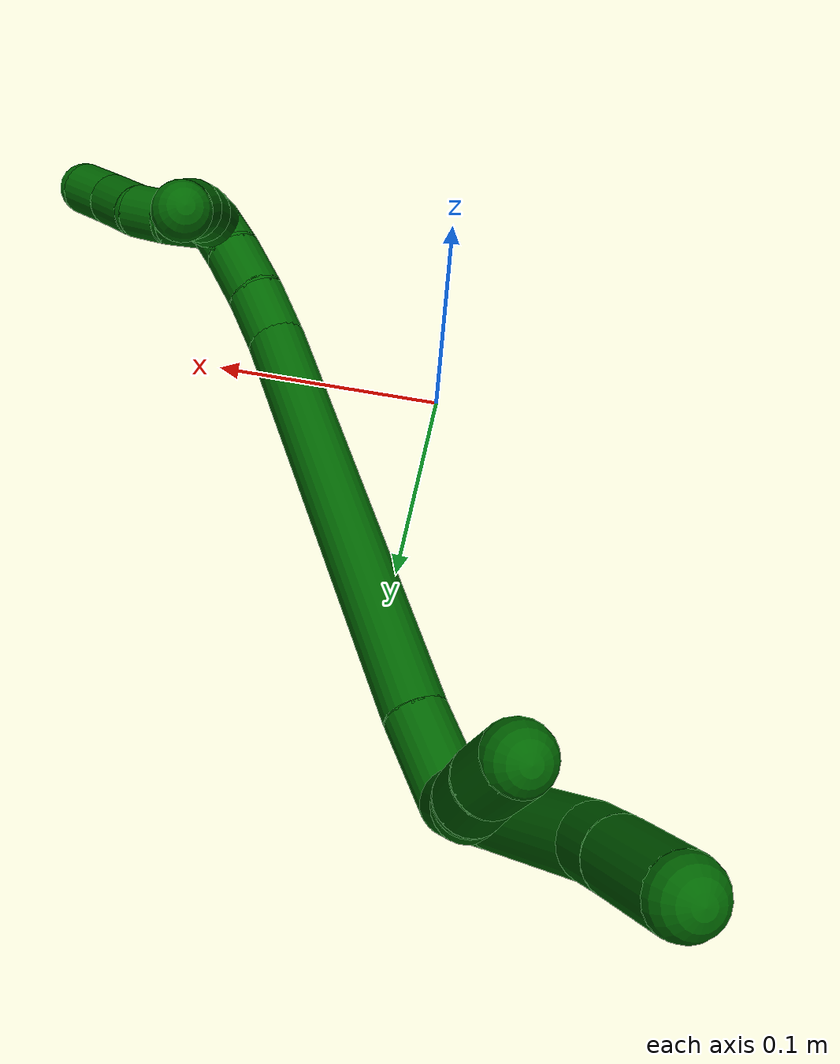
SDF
<sdf version="1.7">
 <world name="default">
  <model name="bin">
   <static>1</static>
   <link name="bottom">
    <collision name="collision-bottom">
     <pose>0 0 -0.01 0 -0 0</pose>
     <geometry><box><size>0.8 0.6 0.02</size></box></geometry>
     <surface>
      <friction><ode><mu>100</mu><mu2>100</mu2></ode></friction>
      <contact><collide_bitmask>65535</collide_bitmask></contact>
     </surface>
    </collision>
   </link>
   <link name="west_wall">
    <collision name="collision-west_wall">
     <pose>-0.41 0 0.1 0 -0 0</pose>
     <geometry><box><size>0.02 0.6 0.2</size></box></geometry>
     <surface>
      <friction><ode><mu>100</mu><mu2>100</mu2></ode></friction>
      <contact><collide_bitmask>65535</collide_bitmask></contact>
     </surface>
    </collision>
   </link>
   <link name="east_wall">
    <collision name="collision-east_wall">
     <pose>0.41 0 0.1 0 -0 0</pose>
     <geometry><box><size>0.02 0.6 0.2</size></box></geometry>
     <surface>
      <friction><ode><mu>100</mu><mu2>100</mu2></ode></friction>
      <contact><collide_bitmask>65535</collide_bitmask></contact>
     </surface>
    </collision>
   </link>
   <link name="south_wall">
    <collision name="collision-south_wall">
     <pose>0 -0.31 0.1 0 -0 0</pose>
     <geometry><box><size>0.8 0.02 0.2</size></box></geometry>
     <surface>
      <friction><ode><mu>100</mu><mu2>100</mu2></ode></friction>
      <contact><collide_bitmask>65535</collide_bitmask></contact>
     </surface>
    </collision>
   </link>
   <link name="north_wall">
    <collision name="collision-north_wall">
     <pose>0 0.31 0.1 0 -0 0</pose>
     <geometry><box><size>0.8 0.02 0.2</size></box></geometry>
     <surface>
      <friction><ode><mu>100</mu><mu2>100</mu2></ode></friction>
      <contact><collide_bitmask>65535</collide_bitmask></contact>
     </surface>
    </collision>
   </link>
  </model>
  <model name="6">
   <static>0</static>
   <link name="6">
    <collision name="collision-cylinder-e_1_2_8">
     <pose>-0.002357 -0.001184 0.015288 0.077267 -0.152524 -0.005907</pose>
     <geometry><cylinder><radius>0.0125</radius><length>0.031027</length></cylinder></geometry>
     <surface>
      <friction><ode><mu>1.16</mu><mu2>1.16</mu2><slip1>0</slip1><slip2>0</slip2></ode></friction>
      <contact><ode><kp>1e+06</kp><kd>1</kd><max_vel>0</max_vel><min_depth>0.001</min_depth></ode></contact>
     </surface>
    </collision>
    <visual name="visual-cylinder-e_1_2_8">
     <pose>-0.002357 -0.001184 0.015288 0.077267 -0.152524 -0.005907</pose>
     <geometry><cylinder><radius>0.0125</radius><length>0.031027</length></cylinder></geometry>
     <material><ambient>0 0.392157 0.003922 1</ambient></material>
    </visual>
    <collision name="collision-cylinder-e_2_8_9">
     <pose>-0.009505 -0.004241 0.060292 0.06298 -0.159542 -0.005036</pose>
     <geometry><cylinder><radius>0.0125</radius><length>0.060317</length></cylinder></geometry>
     <surface>
      <friction><ode><mu>1.16</mu><mu2>1.16</mu2><slip1>0</slip1><slip2>0</slip2></ode></friction>
      <contact><ode><kp>1e+06</kp><kd>1</kd><max_vel>0</max_vel><min_depth>0.001</min_depth></ode></contact>
     </surface>
    </collision>
    <visual name="visual-cylinder-e_2_8_9">
     <pose>-0.009505 -0.004241 0.060292 0.06298 -0.159542 -0.005036</pose>
     <geometry><cylinder><radius>0.0125</radius><length>0.060317</length></cylinder></geometry>
     <material><ambient>0 0.392157 0.003922 1</ambient></material>
    </visual>
    <collision name="collision-cylinder-e_3_9_10">
     <pose>-0.014157 -0.006258 0.100012 0.014255 0.013971 0.0001</pose>
     <geometry><cylinder><radius>0.0125</radius><length>0.02001</length></cylinder></geometry>
     <surface>
      <friction><ode><mu>1.16</mu><mu2>1.16</mu2><slip1>0</slip1><slip2>0</slip2></ode></friction>
      <contact><ode><kp>1e+06</kp><kd>1</kd><max_vel>0</max_vel><min_depth>0.001</min_depth></ode></contact>
     </surface>
    </collision>
    <visual name="visual-cylinder-e_3_9_10">
     <pose>-0.014157 -0.006258 0.100012 0.014255 0.013971 0.0001</pose>
     <geometry><cylinder><radius>0.0125</radius><length>0.02001</length></cylinder></geometry>
     <material><ambient>0 0.392157 0.003922 1</ambient></material>
    </visual>
    <collision name="collision-cylinder-e_4_10_6">
     <pose>-0.014432 -0.005878 0.129326 -0.027044 -0.021459 0.00029</pose>
     <geometry><cylinder><radius>0.0125</radius><length>0.038646</length></cylinder></geometry>
     <surface>
      <friction><ode><mu>1.16</mu><mu2>1.16</mu2><slip1>0</slip1><slip2>0</slip2></ode></friction>
      <contact><ode><kp>1e+06</kp><kd>1</kd><max_vel>0</max_vel><min_depth>0.001</min_depth></ode></contact>
     </surface>
    </collision>
    <visual name="visual-cylinder-e_4_10_6">
     <pose>-0.014432 -0.005878 0.129326 -0.027044 -0.021459 0.00029</pose>
     <geometry><cylinder><radius>0.0125</radius><length>0.038646</length></cylinder></geometry>
     <material><ambient>0 0.392157 0.003922 1</ambient></material>
    </visual>
    <collision name="collision-cylinder-e_1_2_11">
     <pose>0.002058 -0.001786 0.013452 0.132017 0.150526 0.009969</pose>
     <geometry><cylinder><radius>0.0125</radius><length>0.027451</length></cylinder></geometry>
     <surface>
      <friction><ode><mu>1.16</mu><mu2>1.16</mu2><slip1>0</slip1><slip2>0</slip2></ode></friction>
      <contact><ode><kp>1e+06</kp><kd>1</kd><max_vel>0</max_vel><min_depth>0.001</min_depth></ode></contact>
     </surface>
    </collision>
    <visual name="visual-cylinder-e_1_2_11">
     <pose>0.002058 -0.001786 0.013452 0.132017 0.150526 0.009969</pose>
     <geometry><cylinder><radius>0.0125</radius><length>0.027451</length></cylinder></geometry>
     <material><ambient>0 0.392157 0.003922 1</ambient></material>
    </visual>
    <collision name="collision-cylinder-e_2_11_12">
     <pose>0.008147 -0.007317 0.0399 0.280559 0.289609 0.041177</pose>
     <geometry><cylinder><radius>0.0125</radius><length>0.028224</length></cylinder></geometry>
     <surface>
      <friction><ode><mu>1.16</mu><mu2>1.16</mu2><slip1>0</slip1><slip2>0</slip2></ode></friction>
      <contact><ode><kp>1e+06</kp><kd>1</kd><max_vel>0</max_vel><min_depth>0.001</min_depth></ode></contact>
     </surface>
    </collision>
    <visual name="visual-cylinder-e_2_11_12">
     <pose>0.008147 -0.007317 0.0399 0.280559 0.289609 0.041177</pose>
     <geometry><cylinder><radius>0.0125</radius><length>0.028224</length></cylinder></geometry>
     <material><ambient>0 0.392157 0.003922 1</ambient></material>
    </visual>
    <collision name="collision-cylinder-e_3_12_13">
     <pose>0.012683 -0.015797 0.062359 0.463907 0.047793 0.011291</pose>
     <geometry><cylinder><radius>0.0125</radius><length>0.021187</length></cylinder></geometry>
     <surface>
      <friction><ode><mu>1.16</mu><mu2>1.16</mu2><slip1>0</slip1><slip2>0</slip2></ode></friction>
      <contact><ode><kp>1e+06</kp><kd>1</kd><max_vel>0</max_vel><min_depth>0.001</min_depth></ode></contact>
     </surface>
    </collision>
    <visual name="visual-cylinder-e_3_12_13">
     <pose>0.012683 -0.015797 0.062359 0.463907 0.047793 0.011291</pose>
     <geometry><cylinder><radius>0.0125</radius><length>0.021187</length></cylinder></geometry>
     <material><ambient>0 0.392157 0.003922 1</ambient></material>
    </visual>
    <collision name="collision-cylinder-e_4_13_5">
     <pose>0.012443 -0.025671 0.08216 0.461361 -0.064524 -0.015159</pose>
     <geometry><cylinder><radius>0.0125</radius><length>0.023137</length></cylinder></geometry>
     <surface>
      <friction><ode><mu>1.16</mu><mu2>1.16</mu2><slip1>0</slip1><slip2>0</slip2></ode></friction>
      <contact><ode><kp>1e+06</kp><kd>1</kd><max_vel>0</max_vel><min_depth>0.001</min_depth></ode></contact>
     </surface>
    </collision>
    <visual name="visual-cylinder-e_4_13_5">
     <pose>0.012443 -0.025671 0.08216 0.461361 -0.064524 -0.015159</pose>
     <geometry><cylinder><radius>0.0125</radius><length>0.023137</length></cylinder></geometry>
     <material><ambient>0 0.392157 0.003922 1</ambient></material>
    </visual>
    <collision name="collision-cylinder-e_1_2_14">
     <pose>0.004395 -0.013514 -0.01107 2.2571 0.246482 0.511709</pose>
     <geometry><cylinder><radius>0.0125</radius><length>0.036028</length></cylinder></geometry>
     <surface>
      <friction><ode><mu>1.16</mu><mu2>1.16</mu2><slip1>0</slip1><slip2>0</slip2></ode></friction>
      <contact><ode><kp>1e+06</kp><kd>1</kd><max_vel>0</max_vel><min_depth>0.001</min_depth></ode></contact>
     </surface>
    </collision>
    <visual name="visual-cylinder-e_1_2_14">
     <pose>0.004395 -0.013514 -0.01107 2.2571 0.246482 0.511709</pose>
     <geometry><cylinder><radius>0.0125</radius><length>0.036028</length></cylinder></geometry>
     <material><ambient>0 0.392157 0.003922 1</ambient></material>
    </visual>
    <collision name="collision-cylinder-e_2_14_15">
     <pose>0.026712 -0.099158 -0.0814 2.25855 0.189668 0.397197</pose>
     <geometry><cylinder><radius>0.0125</radius><length>0.190109</length></cylinder></geometry>
     <surface>
      <friction><ode><mu>1.16</mu><mu2>1.16</mu2><slip1>0</slip1><slip2>0</slip2></ode></friction>
      <contact><ode><kp>1e+06</kp><kd>1</kd><max_vel>0</max_vel><min_depth>0.001</min_depth></ode></contact>
     </surface>
    </collision>
    <visual name="visual-cylinder-e_2_14_15">
     <pose>0.026712 -0.099158 -0.0814 2.25855 0.189668 0.397197</pose>
     <geometry><cylinder><radius>0.0125</radius><length>0.190109</length></cylinder></geometry>
     <material><ambient>0 0.392157 0.003922 1</ambient></material>
    </visual>
    <collision name="collision-cylinder-e_3_15_16">
     <pose>0.048753 -0.181776 -0.146233 2.0593 0.333896 0.546754</pose>
     <geometry><cylinder><radius>0.0125</radius><length>0.025144</length></cylinder></geometry>
     <surface>
      <friction><ode><mu>1.16</mu><mu2>1.16</mu2><slip1>0</slip1><slip2>0</slip2></ode></friction>
      <contact><ode><kp>1e+06</kp><kd>1</kd><max_vel>0</max_vel><min_depth>0.001</min_depth></ode></contact>
     </surface>
    </collision>
    <visual name="visual-cylinder-e_3_15_16">
     <pose>0.048753 -0.181776 -0.146233 2.0593 0.333896 0.546754</pose>
     <geometry><cylinder><radius>0.0125</radius><length>0.025144</length></cylinder></geometry>
     <material><ambient>0 0.392157 0.003922 1</ambient></material>
    </visual>
    <collision name="collision-cylinder-e_4_16_17">
     <pose>0.05726 -0.20203 -0.158585 2.17752 0.353504 0.657965</pose>
     <geometry><cylinder><radius>0.0125</radius><length>0.025341</length></cylinder></geometry>
     <surface>
      <friction><ode><mu>1.16</mu><mu2>1.16</mu2><slip1>0</slip1><slip2>0</slip2></ode></friction>
      <contact><ode><kp>1e+06</kp><kd>1</kd><max_vel>0</max_vel><min_depth>0.001</min_depth></ode></contact>
     </surface>
    </collision>
    <visual name="visual-cylinder-e_4_16_17">
     <pose>0.05726 -0.20203 -0.158585 2.17752 0.353504 0.657965</pose>
     <geometry><cylinder><radius>0.0125</radius><length>0.025341</length></cylinder></geometry>
     <material><ambient>0 0.392157 0.003922 1</ambient></material>
    </visual>
    <collision name="collision-cylinder-e_5_17_1">
     <pose>0.06534 -0.219698 -0.173142 2.34836 0.321586 0.738974</pose>
     <geometry><cylinder><radius>0.0125</radius><length>0.023376</length></cylinder></geometry>
     <surface>
      <friction><ode><mu>1.16</mu><mu2>1.16</mu2><slip1>0</slip1><slip2>0</slip2></ode></friction>
      <contact><ode><kp>1e+06</kp><kd>1</kd><max_vel>0</max_vel><min_depth>0.001</min_depth></ode></contact>
     </surface>
    </collision>
    <visual name="visual-cylinder-e_5_17_1">
     <pose>0.06534 -0.219698 -0.173142 2.34836 0.321586 0.738974</pose>
     <geometry><cylinder><radius>0.0125</radius><length>0.023376</length></cylinder></geometry>
     <material><ambient>0 0.392157 0.003922 1</ambient></material>
    </visual>
    <collision name="collision-cylinder-e_1_1_18">
     <pose>0.075748 -0.224804 -0.154801 -0.106627 0.250201 -0.013422</pose>
     <geometry><cylinder><radius>0.0125</radius><length>0.054227</length></cylinder></geometry>
     <surface>
      <friction><ode><mu>1.16</mu><mu2>1.16</mu2><slip1>0</slip1><slip2>0</slip2></ode></friction>
      <contact><ode><kp>1e+06</kp><kd>1</kd><max_vel>0</max_vel><min_depth>0.001</min_depth></ode></contact>
     </surface>
    </collision>
    <visual name="visual-cylinder-e_1_1_18">
     <pose>0.075748 -0.224804 -0.154801 -0.106627 0.250201 -0.013422</pose>
     <geometry><cylinder><radius>0.0125</radius><length>0.054227</length></cylinder></geometry>
     <material><ambient>0 0.392157 0.003922 1</ambient></material>
    </visual>
    <collision name="collision-cylinder-e_2_18_19">
     <pose>0.08599 -0.220685 -0.117726 -0.12024 0.309488 -0.018778</pose>
     <geometry><cylinder><radius>0.0125</radius><length>0.02317</length></cylinder></geometry>
     <surface>
      <friction><ode><mu>1.16</mu><mu2>1.16</mu2><slip1>0</slip1><slip2>0</slip2></ode></friction>
      <contact><ode><kp>1e+06</kp><kd>1</kd><max_vel>0</max_vel><min_depth>0.001</min_depth></ode></contact>
     </surface>
    </collision>
    <visual name="visual-cylinder-e_2_18_19">
     <pose>0.08599 -0.220685 -0.117726 -0.12024 0.309488 -0.018778</pose>
     <geometry><cylinder><radius>0.0125</radius><length>0.02317</length></cylinder></geometry>
     <material><ambient>0 0.392157 0.003922 1</ambient></material>
    </visual>
    <collision name="collision-cylinder-e_3_19_4">
     <pose>0.092888 -0.216892 -0.09627 -0.230981 0.302812 -0.035395</pose>
     <geometry><cylinder><radius>0.0125</radius><length>0.022602</length></cylinder></geometry>
     <surface>
      <friction><ode><mu>1.16</mu><mu2>1.16</mu2><slip1>0</slip1><slip2>0</slip2></ode></friction>
      <contact><ode><kp>1e+06</kp><kd>1</kd><max_vel>0</max_vel><min_depth>0.001</min_depth></ode></contact>
     </surface>
    </collision>
    <visual name="visual-cylinder-e_3_19_4">
     <pose>0.092888 -0.216892 -0.09627 -0.230981 0.302812 -0.035395</pose>
     <geometry><cylinder><radius>0.0125</radius><length>0.022602</length></cylinder></geometry>
     <material><ambient>0 0.392157 0.003922 1</ambient></material>
    </visual>
    <collision name="collision-cylinder-e_1_1_20">
     <pose>0.078351 -0.229195 -0.188797 2.94179 0.859067 2.71073</pose>
     <geometry><cylinder><radius>0.0125</radius><length>0.024605</length></cylinder></geometry>
     <surface>
      <friction><ode><mu>1.16</mu><mu2>1.16</mu2><slip1>0</slip1><slip2>0</slip2></ode></friction>
      <contact><ode><kp>1e+06</kp><kd>1</kd><max_vel>0</max_vel><min_depth>0.001</min_depth></ode></contact>
     </surface>
    </collision>
    <visual name="visual-cylinder-e_1_1_20">
     <pose>0.078351 -0.229195 -0.188797 2.94179 0.859067 2.71073</pose>
     <geometry><cylinder><radius>0.0125</radius><length>0.024605</length></cylinder></geometry>
     <material><ambient>0 0.392157 0.003922 1</ambient></material>
    </visual>
    <collision name="collision-cylinder-e_2_20_21">
     <pose>0.094188 -0.233139 -0.204803 2.8603 0.656587 2.35374</pose>
     <geometry><cylinder><radius>0.0125</radius><length>0.021368</length></cylinder></geometry>
     <surface>
      <friction><ode><mu>1.16</mu><mu2>1.16</mu2><slip1>0</slip1><slip2>0</slip2></ode></friction>
      <contact><ode><kp>1e+06</kp><kd>1</kd><max_vel>0</max_vel><min_depth>0.001</min_depth></ode></contact>
     </surface>
    </collision>
    <visual name="visual-cylinder-e_2_20_21">
     <pose>0.094188 -0.233139 -0.204803 2.8603 0.656587 2.35374</pose>
     <geometry><cylinder><radius>0.0125</radius><length>0.021368</length></cylinder></geometry>
     <material><ambient>0 0.392157 0.003922 1</ambient></material>
    </visual>
    <collision name="collision-cylinder-e_3_21_22">
     <pose>0.105702 -0.240001 -0.22586 2.80573 0.349591 1.61164</pose>
     <geometry><cylinder><radius>0.0125</radius><length>0.029148</length></cylinder></geometry>
     <surface>
      <friction><ode><mu>1.16</mu><mu2>1.16</mu2><slip1>0</slip1><slip2>0</slip2></ode></friction>
      <contact><ode><kp>1e+06</kp><kd>1</kd><max_vel>0</max_vel><min_depth>0.001</min_depth></ode></contact>
     </surface>
    </collision>
    <visual name="visual-cylinder-e_3_21_22">
     <pose>0.105702 -0.240001 -0.22586 2.80573 0.349591 1.61164</pose>
     <geometry><cylinder><radius>0.0125</radius><length>0.029148</length></cylinder></geometry>
     <material><ambient>0 0.392157 0.003922 1</ambient></material>
    </visual>
    <collision name="collision-cylinder-e_4_22_3">
     <pose>0.116826 -0.248565 -0.248823 2.75793 0.515547 1.87173</pose>
     <geometry><cylinder><radius>0.0125</radius><length>0.024879</length></cylinder></geometry>
     <surface>
      <friction><ode><mu>1.16</mu><mu2>1.16</mu2><slip1>0</slip1><slip2>0</slip2></ode></friction>
      <contact><ode><kp>1e+06</kp><kd>1</kd><max_vel>0</max_vel><min_depth>0.001</min_depth></ode></contact>
     </surface>
    </collision>
    <visual name="visual-cylinder-e_4_22_3">
     <pose>0.116826 -0.248565 -0.248823 2.75793 0.515547 1.87173</pose>
     <geometry><cylinder><radius>0.0125</radius><length>0.024879</length></cylinder></geometry>
     <material><ambient>0 0.392157 0.003922 1</ambient></material>
    </visual>
    <collision name="collision-sphere-3">
     <pose>0.122959 -0.252616 -0.258859 0 -0 0</pose>
     <geometry><sphere><radius>0.0125</radius></sphere></geometry>
     <surface>
      <friction><ode><mu>1.16</mu><mu2>1.16</mu2><slip1>0</slip1><slip2>0</slip2></ode></friction>
      <contact><ode><kp>1e+06</kp><kd>1</kd><max_vel>0</max_vel><min_depth>0.001</min_depth></ode></contact>
     </surface>
    </collision>
    <visual name="visual-sphere-3">
     <pose>0.122959 -0.252616 -0.258859 0 -0 0</pose>
     <geometry><sphere><radius>0.0125</radius></sphere></geometry>
     <material><ambient>0 0.392157 0.003922 1</ambient></material>
    </visual>
    <collision name="collision-sphere-22">
     <pose>0.110694 -0.244514 -0.238787 0 -0 0</pose>
     <geometry><sphere><radius>0.0125</radius></sphere></geometry>
     <surface>
      <friction><ode><mu>1.16</mu><mu2>1.16</mu2><slip1>0</slip1><slip2>0</slip2></ode></friction>
      <contact><ode><kp>1e+06</kp><kd>1</kd><max_vel>0</max_vel><min_depth>0.001</min_depth></ode></contact>
     </surface>
    </collision>
    <visual name="visual-sphere-22">
     <pose>0.110694 -0.244514 -0.238787 0 -0 0</pose>
     <geometry><sphere><radius>0.0125</radius></sphere></geometry>
     <material><ambient>0 0.392157 0.003922 1</ambient></material>
    </visual>
    <collision name="collision-sphere-21">
     <pose>0.10071 -0.235488 -0.212933 0 -0 0</pose>
     <geometry><sphere><radius>0.0125</radius></sphere></geometry>
     <surface>
      <friction><ode><mu>1.16</mu><mu2>1.16</mu2><slip1>0</slip1><slip2>0</slip2></ode></friction>
      <contact><ode><kp>1e+06</kp><kd>1</kd><max_vel>0</max_vel><min_depth>0.001</min_depth></ode></contact>
     </surface>
    </collision>
    <visual name="visual-sphere-21">
     <pose>0.10071 -0.235488 -0.212933 0 -0 0</pose>
     <geometry><sphere><radius>0.0125</radius></sphere></geometry>
     <material><ambient>0 0.392157 0.003922 1</ambient></material>
    </visual>
    <collision name="collision-sphere-20">
     <pose>0.087666 -0.23079 -0.196673 0 -0 0</pose>
     <geometry><sphere><radius>0.0125</radius></sphere></geometry>
     <surface>
      <friction><ode><mu>1.16</mu><mu2>1.16</mu2><slip1>0</slip1><slip2>0</slip2></ode></friction>
      <contact><ode><kp>1e+06</kp><kd>1</kd><max_vel>0</max_vel><min_depth>0.001</min_depth></ode></contact>
     </surface>
    </collision>
    <visual name="visual-sphere-20">
     <pose>0.087666 -0.23079 -0.196673 0 -0 0</pose>
     <geometry><sphere><radius>0.0125</radius></sphere></geometry>
     <material><ambient>0 0.392157 0.003922 1</ambient></material>
    </visual>
    <collision name="collision-sphere-4">
     <pose>0.096258 -0.214423 -0.08577 0 -0 0</pose>
     <geometry><sphere><radius>0.0125</radius></sphere></geometry>
     <surface>
      <friction><ode><mu>1.16</mu><mu2>1.16</mu2><slip1>0</slip1><slip2>0</slip2></ode></friction>
      <contact><ode><kp>1e+06</kp><kd>1</kd><max_vel>0</max_vel><min_depth>0.001</min_depth></ode></contact>
     </surface>
    </collision>
    <visual name="visual-sphere-4">
     <pose>0.096258 -0.214423 -0.08577 0 -0 0</pose>
     <geometry><sphere><radius>0.0125</radius></sphere></geometry>
     <material><ambient>0 0.392157 0.003922 1</ambient></material>
    </visual>
    <collision name="collision-sphere-11">
     <pose>0.004117 -0.003573 0.026905 0 -0 0</pose>
     <geometry><sphere><radius>0.0125</radius></sphere></geometry>
     <surface>
      <friction><ode><mu>1.16</mu><mu2>1.16</mu2><slip1>0</slip1><slip2>0</slip2></ode></friction>
      <contact><ode><kp>1e+06</kp><kd>1</kd><max_vel>0</max_vel><min_depth>0.001</min_depth></ode></contact>
     </surface>
    </collision>
    <visual name="visual-sphere-11">
     <pose>0.004117 -0.003573 0.026905 0 -0 0</pose>
     <geometry><sphere><radius>0.0125</radius></sphere></geometry>
     <material><ambient>0 0.392157 0.003922 1</ambient></material>
    </visual>
    <collision name="collision-sphere-6">
     <pose>-0.014846 -0.005356 0.148637 0 -0 0</pose>
     <geometry><sphere><radius>0.0125</radius></sphere></geometry>
     <surface>
      <friction><ode><mu>1.16</mu><mu2>1.16</mu2><slip1>0</slip1><slip2>0</slip2></ode></friction>
      <contact><ode><kp>1e+06</kp><kd>1</kd><max_vel>0</max_vel><min_depth>0.001</min_depth></ode></contact>
     </surface>
    </collision>
    <visual name="visual-sphere-6">
     <pose>-0.014846 -0.005356 0.148637 0 -0 0</pose>
     <geometry><sphere><radius>0.0125</radius></sphere></geometry>
     <material><ambient>0 0.392157 0.003922 1</ambient></material>
    </visual>
    <collision name="collision-sphere-10">
     <pose>-0.014017 -0.0064 0.110014 0 -0 0</pose>
     <geometry><sphere><radius>0.0125</radius></sphere></geometry>
     <surface>
      <friction><ode><mu>1.16</mu><mu2>1.16</mu2><slip1>0</slip1><slip2>0</slip2></ode></friction>
      <contact><ode><kp>1e+06</kp><kd>1</kd><max_vel>0</max_vel><min_depth>0.001</min_depth></ode></contact>
     </surface>
    </collision>
    <visual name="visual-sphere-10">
     <pose>-0.014017 -0.0064 0.110014 0 -0 0</pose>
     <geometry><sphere><radius>0.0125</radius></sphere></geometry>
     <material><ambient>0 0.392157 0.003922 1</ambient></material>
    </visual>
    <collision name="collision-sphere-9">
     <pose>-0.014296 -0.006115 0.090009 0 -0 0</pose>
     <geometry><sphere><radius>0.0125</radius></sphere></geometry>
     <surface>
      <friction><ode><mu>1.16</mu><mu2>1.16</mu2><slip1>0</slip1><slip2>0</slip2></ode></friction>
      <contact><ode><kp>1e+06</kp><kd>1</kd><max_vel>0</max_vel><min_depth>0.001</min_depth></ode></contact>
     </surface>
    </collision>
    <visual name="visual-sphere-9">
     <pose>-0.014296 -0.006115 0.090009 0 -0 0</pose>
     <geometry><sphere><radius>0.0125</radius></sphere></geometry>
     <material><ambient>0 0.392157 0.003922 1</ambient></material>
    </visual>
    <collision name="collision-sphere-2">
     <geometry><sphere><radius>0.0125</radius></sphere></geometry>
     <surface>
      <friction><ode><mu>1.16</mu><mu2>1.16</mu2><slip1>0</slip1><slip2>0</slip2></ode></friction>
      <contact><ode><kp>1e+06</kp><kd>1</kd><max_vel>0</max_vel><min_depth>0.001</min_depth></ode></contact>
     </surface>
    </collision>
    <visual name="visual-sphere-2">
     <geometry><sphere><radius>0.0125</radius></sphere></geometry>
     <material><ambient>0 0.392157 0.003922 1</ambient></material>
    </visual>
    <collision name="collision-sphere-19">
     <pose>0.089518 -0.219361 -0.106771 0 -0 0</pose>
     <geometry><sphere><radius>0.0125</radius></sphere></geometry>
     <surface>
      <friction><ode><mu>1.16</mu><mu2>1.16</mu2><slip1>0</slip1><slip2>0</slip2></ode></friction>
      <contact><ode><kp>1e+06</kp><kd>1</kd><max_vel>0</max_vel><min_depth>0.001</min_depth></ode></contact>
     </surface>
    </collision>
    <visual name="visual-sphere-19">
     <pose>0.089518 -0.219361 -0.106771 0 -0 0</pose>
     <geometry><sphere><radius>0.0125</radius></sphere></geometry>
     <material><ambient>0 0.392157 0.003922 1</ambient></material>
    </visual>
    <collision name="collision-sphere-8">
     <pose>-0.004714 -0.002367 0.030576 0 -0 0</pose>
     <geometry><sphere><radius>0.0125</radius></sphere></geometry>
     <surface>
      <friction><ode><mu>1.16</mu><mu2>1.16</mu2><slip1>0</slip1><slip2>0</slip2></ode></friction>
      <contact><ode><kp>1e+06</kp><kd>1</kd><max_vel>0</max_vel><min_depth>0.001</min_depth></ode></contact>
     </surface>
    </collision>
    <visual name="visual-sphere-8">
     <pose>-0.004714 -0.002367 0.030576 0 -0 0</pose>
     <geometry><sphere><radius>0.0125</radius></sphere></geometry>
     <material><ambient>0 0.392157 0.003922 1</ambient></material>
    </visual>
    <collision name="collision-sphere-12">
     <pose>0.012177 -0.011062 0.052896 0 -0 0</pose>
     <geometry><sphere><radius>0.0125</radius></sphere></geometry>
     <surface>
      <friction><ode><mu>1.16</mu><mu2>1.16</mu2><slip1>0</slip1><slip2>0</slip2></ode></friction>
      <contact><ode><kp>1e+06</kp><kd>1</kd><max_vel>0</max_vel><min_depth>0.001</min_depth></ode></contact>
     </surface>
    </collision>
    <visual name="visual-sphere-12">
     <pose>0.012177 -0.011062 0.052896 0 -0 0</pose>
     <geometry><sphere><radius>0.0125</radius></sphere></geometry>
     <material><ambient>0 0.392157 0.003922 1</ambient></material>
    </visual>
    <collision name="collision-sphere-13">
     <pose>0.013189 -0.020532 0.071822 0 -0 0</pose>
     <geometry><sphere><radius>0.0125</radius></sphere></geometry>
     <surface>
      <friction><ode><mu>1.16</mu><mu2>1.16</mu2><slip1>0</slip1><slip2>0</slip2></ode></friction>
      <contact><ode><kp>1e+06</kp><kd>1</kd><max_vel>0</max_vel><min_depth>0.001</min_depth></ode></contact>
     </surface>
    </collision>
    <visual name="visual-sphere-13">
     <pose>0.013189 -0.020532 0.071822 0 -0 0</pose>
     <geometry><sphere><radius>0.0125</radius></sphere></geometry>
     <material><ambient>0 0.392157 0.003922 1</ambient></material>
    </visual>
    <collision name="collision-sphere-5">
     <pose>0.011697 -0.03081 0.092497 0 -0 0</pose>
     <geometry><sphere><radius>0.0125</radius></sphere></geometry>
     <surface>
      <friction><ode><mu>1.16</mu><mu2>1.16</mu2><slip1>0</slip1><slip2>0</slip2></ode></friction>
      <contact><ode><kp>1e+06</kp><kd>1</kd><max_vel>0</max_vel><min_depth>0.001</min_depth></ode></contact>
     </surface>
    </collision>
    <visual name="visual-sphere-5">
     <pose>0.011697 -0.03081 0.092497 0 -0 0</pose>
     <geometry><sphere><radius>0.0125</radius></sphere></geometry>
     <material><ambient>0 0.392157 0.003922 1</ambient></material>
    </visual>
    <collision name="collision-sphere-14">
     <pose>0.008791 -0.027029 -0.022141 0 -0 0</pose>
     <geometry><sphere><radius>0.0125</radius></sphere></geometry>
     <surface>
      <friction><ode><mu>1.16</mu><mu2>1.16</mu2><slip1>0</slip1><slip2>0</slip2></ode></friction>
      <contact><ode><kp>1e+06</kp><kd>1</kd><max_vel>0</max_vel><min_depth>0.001</min_depth></ode></contact>
     </surface>
    </collision>
    <visual name="visual-sphere-14">
     <pose>0.008791 -0.027029 -0.022141 0 -0 0</pose>
     <geometry><sphere><radius>0.0125</radius></sphere></geometry>
     <material><ambient>0 0.392157 0.003922 1</ambient></material>
    </visual>
    <collision name="collision-sphere-15">
     <pose>0.044633 -0.171287 -0.140659 0 -0 0</pose>
     <geometry><sphere><radius>0.0125</radius></sphere></geometry>
     <surface>
      <friction><ode><mu>1.16</mu><mu2>1.16</mu2><slip1>0</slip1><slip2>0</slip2></ode></friction>
      <contact><ode><kp>1e+06</kp><kd>1</kd><max_vel>0</max_vel><min_depth>0.001</min_depth></ode></contact>
     </surface>
    </collision>
    <visual name="visual-sphere-15">
     <pose>0.044633 -0.171287 -0.140659 0 -0 0</pose>
     <geometry><sphere><radius>0.0125</radius></sphere></geometry>
     <material><ambient>0 0.392157 0.003922 1</ambient></material>
    </visual>
    <collision name="collision-sphere-16">
     <pose>0.052873 -0.192264 -0.151807 0 -0 0</pose>
     <geometry><sphere><radius>0.0125</radius></sphere></geometry>
     <surface>
      <friction><ode><mu>1.16</mu><mu2>1.16</mu2><slip1>0</slip1><slip2>0</slip2></ode></friction>
      <contact><ode><kp>1e+06</kp><kd>1</kd><max_vel>0</max_vel><min_depth>0.001</min_depth></ode></contact>
     </surface>
    </collision>
    <visual name="visual-sphere-16">
     <pose>0.052873 -0.192264 -0.151807 0 -0 0</pose>
     <geometry><sphere><radius>0.0125</radius></sphere></geometry>
     <material><ambient>0 0.392157 0.003922 1</ambient></material>
    </visual>
    <collision name="collision-sphere-17">
     <pose>0.061646 -0.211796 -0.165363 0 -0 0</pose>
     <geometry><sphere><radius>0.0125</radius></sphere></geometry>
     <surface>
      <friction><ode><mu>1.16</mu><mu2>1.16</mu2><slip1>0</slip1><slip2>0</slip2></ode></friction>
      <contact><ode><kp>1e+06</kp><kd>1</kd><max_vel>0</max_vel><min_depth>0.001</min_depth></ode></contact>
     </surface>
    </collision>
    <visual name="visual-sphere-17">
     <pose>0.061646 -0.211796 -0.165363 0 -0 0</pose>
     <geometry><sphere><radius>0.0125</radius></sphere></geometry>
     <material><ambient>0 0.392157 0.003922 1</ambient></material>
    </visual>
    <collision name="collision-sphere-1">
     <pose>0.069035 -0.2276 -0.180922 0 -0 0</pose>
     <geometry><sphere><radius>0.0125</radius></sphere></geometry>
     <surface>
      <friction><ode><mu>1.16</mu><mu2>1.16</mu2><slip1>0</slip1><slip2>0</slip2></ode></friction>
      <contact><ode><kp>1e+06</kp><kd>1</kd><max_vel>0</max_vel><min_depth>0.001</min_depth></ode></contact>
     </surface>
    </collision>
    <visual name="visual-sphere-1">
     <pose>0.069035 -0.2276 -0.180922 0 -0 0</pose>
     <geometry><sphere><radius>0.0125</radius></sphere></geometry>
     <material><ambient>0 0.392157 0.003922 1</ambient></material>
    </visual>
    <collision name="collision-sphere-18">
     <pose>0.082461 -0.222009 -0.128681 0 -0 0</pose>
     <geometry><sphere><radius>0.0125</radius></sphere></geometry>
     <surface>
      <friction><ode><mu>1.16</mu><mu2>1.16</mu2><slip1>0</slip1><slip2>0</slip2></ode></friction>
      <contact><ode><kp>1e+06</kp><kd>1</kd><max_vel>0</max_vel><min_depth>0.001</min_depth></ode></contact>
     </surface>
    </collision>
    <visual name="visual-sphere-18">
     <pose>0.082461 -0.222009 -0.128681 0 -0 0</pose>
     <geometry><sphere><radius>0.0125</radius></sphere></geometry>
     <material><ambient>0 0.392157 0.003922 1</ambient></material>
    </visual>
    <inertial>
     <pose>0.035898 -0.109333 -0.06251 0 -0 0</pose>
     <mass>0.75</mass>
     <inertia>
      <ixx>0.000836</ixx>
      <ixy>0</ixy>
      <ixz>0</ixz>
      <iyy>-3.5e-05</iyy>
      <iyz>0</iyz>
      <izz>0.00034</izz>
     </inertia>
    </inertial>
   </link>
   <pose>-0.039566 0.205849 0.011882 -0.738611 -0.191434 0.327199</pose>
  </model>
 </world>
</sdf>
